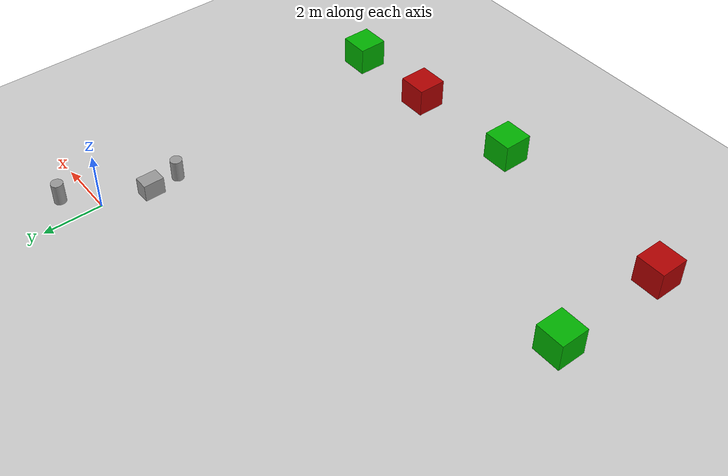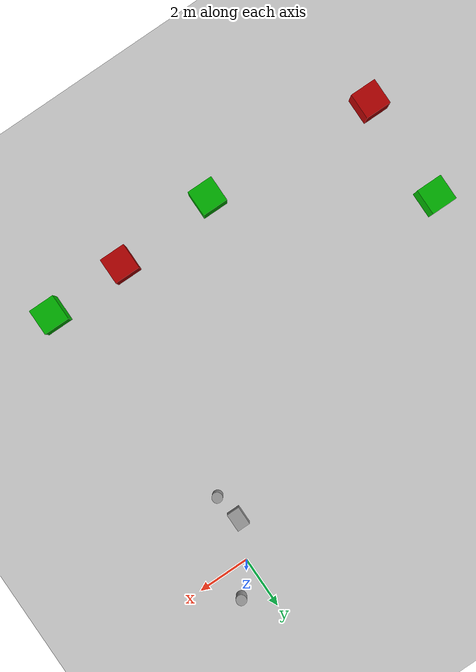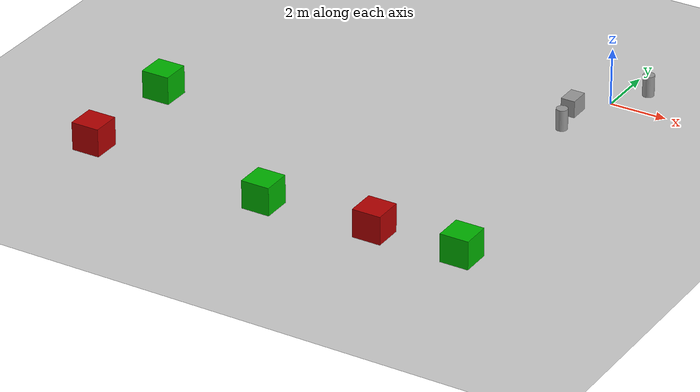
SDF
<sdf version="1.6">
 <world name="default">
  <model name="ground_plane">
   <static>1</static>
   <link name="link">
    <collision name="collision">
     <geometry><plane><normal>0 0 1</normal><size>100 100</size></plane></geometry>
     <surface>
      <contact><collide_bitmask>65535</collide_bitmask></contact>
      <friction><ode><mu>100</mu><mu2>50</mu2></ode></friction>
     </surface>
    </collision>
    <visual name="visual">
     <cast_shadows>0</cast_shadows>
     <geometry><plane><normal>0 0 1</normal><size>100 100</size></plane></geometry>
     <material>
      <script><uri>file://media/materials/scripts/gazebo.material</uri><name>Gazebo/Grey</name></script>
     </material>
    </visual>
   </link>
  </model>
  <light name="sun" type="directional">
   <pose>0 0 10 0 -0 0</pose>
   <diffuse>0.8 0.8 0.8 1</diffuse>
   <specular>0.2 0.2 0.2 1</specular>
   <attenuation>
    <range>1000</range>
    <constant>0.9</constant>
    <linear>0.01</linear>
    <quadratic>0.001</quadratic>
   </attenuation>
   <direction>-0.5 0.1 -0.9</direction>
  </light>
  <gravity>0 0 -9.8</gravity>
  <magnetic_field>6e-06 2.3e-05 -4.2e-05</magnetic_field>
  <atmosphere type="adiabatic"/>
  <physics name="default_physics" default="0" type="ode">
   <max_step_size>0.001</max_step_size>
   <real_time_factor>1</real_time_factor>
   <real_time_update_rate>1000</real_time_update_rate>
  </physics>
  <scene><ambient>0.4 0.4 0.4 1</ambient><background>0.7 0.7 0.7 1</background><shadows>1</shadows></scene>
  <audio><device>default</device></audio>
  <spherical_coordinates>
   <surface_model>EARTH_WGS84</surface_model>
   <latitude_deg>0</latitude_deg>
   <longitude_deg>0</longitude_deg>
   <elevation>0</elevation>
   <heading_deg>0</heading_deg>
  </spherical_coordinates>
  <model name="cylinder_mainroom">
   <link name="link">
    <inertial>
     <mass>1</mass>
     <inertia><ixx>0.145833</ixx><ixy>0</ixy><ixz>0</ixz><iyy>0.145833</iyy><iyz>0</iyz><izz>0.125</izz></inertia>
    </inertial>
    <visual name="visual">
     <geometry><cylinder><radius>0.2</radius><length>0.75</length></cylinder></geometry>
     <material>
      <script><name>Gazebo/Grey</name><uri>file://media/materials/scripts/gazebo.material</uri></script>
      <shader type="vertex"><normal_map>__default__</normal_map></shader>
      <ambient>0.3 0.3 0.3 1</ambient>
      <diffuse>0.7 0.7 0.7 1</diffuse>
      <specular>0.01 0.01 0.01 1</specular>
      <emissive>0 0 0 1</emissive>
     </material>
    </visual>
    <collision name="collision">
     <geometry><cylinder><radius>0.5</radius><length>1</length></cylinder></geometry>
     <surface>
      <friction>
       <ode><mu>1</mu><mu2>1</mu2><fdir1>0 0 0</fdir1><slip1>0</slip1><slip2>0</slip2></ode>
       <torsional>
        <coefficient>1</coefficient>
        <patch_radius>0</patch_radius>
        <surface_radius>0</surface_radius>
        <use_patch_radius>1</use_patch_radius>
        <ode><slip>0</slip></ode>
       </torsional>
      </friction>
      <bounce><restitution_coefficient>0</restitution_coefficient><threshold>1e+06</threshold></bounce>
      <contact>
       <collide_without_contact>0</collide_without_contact>
       <collide_without_contact_bitmask>1</collide_without_contact_bitmask>
       <collide_bitmask>1</collide_bitmask>
       <ode>
        <soft_cfm>0</soft_cfm>
        <soft_erp>0.2</soft_erp>
        <kp>1e+13</kp>
        <kd>1</kd>
        <max_vel>0.01</max_vel>
        <min_depth>0</min_depth>
       </ode>
       <bullet>
        <split_impulse>1</split_impulse>
        <split_impulse_penetration_threshold>-0.01</split_impulse_penetration_threshold>
        <soft_cfm>0</soft_cfm>
        <soft_erp>0.2</soft_erp>
        <kp>1e+13</kp>
        <kd>1</kd>
       </bullet>
      </contact>
     </surface>
    </collision>
   </link>
   <static>0</static>
   <pose>-0.46829 -2.53002 0.499996 -2e-06 -2e-06 0</pose>
  </model>
  <model name="cylinder_mainroom_clone">
   <link name="link">
    <inertial>
     <mass>1</mass>
     <inertia><ixx>0.145833</ixx><ixy>0</ixy><ixz>0</ixz><iyy>0.145833</iyy><iyz>0</iyz><izz>0.125</izz></inertia>
    </inertial>
    <visual name="visual">
     <geometry><cylinder><radius>0.2</radius><length>0.75</length></cylinder></geometry>
     <material>
      <script><name>Gazebo/Grey</name><uri>file://media/materials/scripts/gazebo.material</uri></script>
      <shader type="vertex"><normal_map>__default__</normal_map></shader>
      <ambient>0.3 0.3 0.3 1</ambient>
      <diffuse>0.7 0.7 0.7 1</diffuse>
      <specular>0.01 0.01 0.01 1</specular>
      <emissive>0 0 0 1</emissive>
     </material>
    </visual>
    <collision name="collision">
     <geometry><cylinder><radius>0.5</radius><length>1</length></cylinder></geometry>
     <surface>
      <friction>
       <ode><mu>1</mu><mu2>1</mu2><fdir1>0 0 0</fdir1><slip1>0</slip1><slip2>0</slip2></ode>
       <torsional>
        <coefficient>1</coefficient>
        <patch_radius>0</patch_radius>
        <surface_radius>0</surface_radius>
        <use_patch_radius>1</use_patch_radius>
        <ode><slip>0</slip></ode>
       </torsional>
      </friction>
      <bounce><restitution_coefficient>0</restitution_coefficient><threshold>1e+06</threshold></bounce>
      <contact>
       <collide_without_contact>0</collide_without_contact>
       <collide_without_contact_bitmask>1</collide_without_contact_bitmask>
       <collide_bitmask>1</collide_bitmask>
       <ode>
        <soft_cfm>0</soft_cfm>
        <soft_erp>0.2</soft_erp>
        <kp>1e+13</kp>
        <kd>1</kd>
        <max_vel>0.01</max_vel>
        <min_depth>0</min_depth>
       </ode>
       <bullet>
        <split_impulse>1</split_impulse>
        <split_impulse_penetration_threshold>-0.01</split_impulse_penetration_threshold>
        <soft_cfm>0</soft_cfm>
        <soft_erp>0.2</soft_erp>
        <kp>1e+13</kp>
        <kd>1</kd>
       </bullet>
      </contact>
     </surface>
    </collision>
   </link>
   <static>0</static>
   <pose>0.868753 0.954082 0.499996 -2e-06 -2e-06 0</pose>
  </model>
  <model name="box_mainroom">
   <link name="link">
    <inertial>
     <mass>1</mass>
     <inertia>
      <ixx>0.166667</ixx>
      <ixy>0</ixy>
      <ixz>0</ixz>
      <iyy>0.166667</iyy>
      <iyz>0</iyz>
      <izz>0.166667</izz>
     </inertia>
    </inertial>
    <visual name="visual">
     <geometry><box><size>0.5 0.7 0.6</size></box></geometry>
     <material>
      <script><name>Gazebo/Grey</name><uri>file://media/materials/scripts/gazebo.material</uri></script>
      <shader type="vertex"><normal_map>__default__</normal_map></shader>
      <ambient>0.3 0.3 0.3 1</ambient>
      <diffuse>0.7 0.7 0.7 1</diffuse>
      <specular>0.01 0.01 0.01 1</specular>
      <emissive>0 0 0 1</emissive>
     </material>
    </visual>
    <collision name="collision">
     <geometry><box><size>1 1 1</size></box></geometry>
     <surface>
      <friction>
       <ode><mu>1</mu><mu2>1</mu2><fdir1>0 0 0</fdir1><slip1>0</slip1><slip2>0</slip2></ode>
       <torsional>
        <coefficient>1</coefficient>
        <patch_radius>0</patch_radius>
        <surface_radius>0</surface_radius>
        <use_patch_radius>1</use_patch_radius>
        <ode><slip>0</slip></ode>
       </torsional>
      </friction>
      <bounce><restitution_coefficient>0</restitution_coefficient><threshold>1e+06</threshold></bounce>
      <contact>
       <collide_without_contact>0</collide_without_contact>
       <collide_without_contact_bitmask>1</collide_without_contact_bitmask>
       <collide_bitmask>1</collide_bitmask>
       <ode>
        <soft_cfm>0</soft_cfm>
        <soft_erp>0.2</soft_erp>
        <kp>1e+13</kp>
        <kd>1</kd>
        <max_vel>0.01</max_vel>
        <min_depth>0</min_depth>
       </ode>
       <bullet>
        <split_impulse>1</split_impulse>
        <split_impulse_penetration_threshold>-0.01</split_impulse_penetration_threshold>
        <soft_cfm>0</soft_cfm>
        <soft_erp>0.2</soft_erp>
        <kp>1e+13</kp>
        <kd>1</kd>
       </bullet>
      </contact>
     </surface>
    </collision>
   </link>
   <static>0</static>
   <pose>-0.647841 -1.46416 0.499995 -1e-05 -0 5e-06</pose>
  </model>
  <model name="unit_box_green">
   <link name="link">
    <inertial>
     <mass>1</mass>
     <inertia>
      <ixx>0.166667</ixx>
      <ixy>0</ixy>
      <ixz>0</ixz>
      <iyy>0.166667</iyy>
      <iyz>0</iyz>
      <izz>0.166667</izz>
     </inertia>
    </inertial>
    <visual name="visual">
     <geometry><box><size>1 1 1</size></box></geometry>
     <material>
      <script><name>Gazebo/Grey</name><uri>file://media/materials/scripts/gazebo.material</uri></script>
      <diffuse>0 0.7 0 0</diffuse>
      <shader type="vertex"><normal_map>__default__</normal_map></shader>
      <ambient>0 0.7 0 0</ambient>
      <specular>0.01 0.01 0.01 1</specular>
      <emissive>0 0 0 1</emissive>
     </material>
    </visual>
    <collision name="collision">
     <geometry><box><size>1 1 1</size></box></geometry>
     <surface>
      <friction>
       <ode><mu>1</mu><mu2>1</mu2><fdir1>0 0 0</fdir1><slip1>0</slip1><slip2>0</slip2></ode>
       <torsional>
        <coefficient>1</coefficient>
        <patch_radius>0</patch_radius>
        <surface_radius>0</surface_radius>
        <use_patch_radius>1</use_patch_radius>
        <ode><slip>0</slip></ode>
       </torsional>
      </friction>
      <bounce><restitution_coefficient>0</restitution_coefficient><threshold>1e+06</threshold></bounce>
      <contact>
       <collide_without_contact>0</collide_without_contact>
       <collide_without_contact_bitmask>1</collide_without_contact_bitmask>
       <collide_bitmask>1</collide_bitmask>
       <ode>
        <soft_cfm>0</soft_cfm>
        <soft_erp>0.2</soft_erp>
        <kp>1e+13</kp>
        <kd>1</kd>
        <max_vel>0.01</max_vel>
        <min_depth>0</min_depth>
       </ode>
       <bullet>
        <split_impulse>1</split_impulse>
        <split_impulse_penetration_threshold>-0.01</split_impulse_penetration_threshold>
        <soft_cfm>0</soft_cfm>
        <soft_erp>0.2</soft_erp>
        <kp>1e+13</kp>
        <kd>1</kd>
       </bullet>
      </contact>
     </surface>
    </collision>
   </link>
   <static>0</static>
   <pose>-6.19717 -11.5548 0.499995 0 1e-05 0</pose>
  </model>
  <model name="unit_box_red">
   <link name="link">
    <inertial>
     <mass>1</mass>
     <inertia>
      <ixx>0.166667</ixx>
      <ixy>0</ixy>
      <ixz>0</ixz>
      <iyy>0.166667</iyy>
      <iyz>0</iyz>
      <izz>0.166667</izz>
     </inertia>
    </inertial>
    <visual name="visual">
     <geometry><box><size>1 1 1</size></box></geometry>
     <material>
      <script><name>Gazebo/Grey</name><uri>file://media/materials/scripts/gazebo.material</uri></script>
      <ambient>0.7 0 0 0</ambient>
      <shader type="vertex"><normal_map>__default__</normal_map></shader>
      <diffuse>0.7 0 0 0</diffuse>
      <specular>0.01 0.01 0.01 1</specular>
      <emissive>0 0 0 1</emissive>
     </material>
    </visual>
    <collision name="collision">
     <geometry><box><size>1 1 1</size></box></geometry>
     <surface>
      <friction>
       <ode><mu>1</mu><mu2>1</mu2><fdir1>0 0 0</fdir1><slip1>0</slip1><slip2>0</slip2></ode>
       <torsional>
        <coefficient>1</coefficient>
        <patch_radius>0</patch_radius>
        <surface_radius>0</surface_radius>
        <use_patch_radius>1</use_patch_radius>
        <ode><slip>0</slip></ode>
       </torsional>
      </friction>
      <bounce><restitution_coefficient>0</restitution_coefficient><threshold>1e+06</threshold></bounce>
      <contact>
       <collide_without_contact>0</collide_without_contact>
       <collide_without_contact_bitmask>1</collide_without_contact_bitmask>
       <collide_bitmask>1</collide_bitmask>
       <ode>
        <soft_cfm>0</soft_cfm>
        <soft_erp>0.2</soft_erp>
        <kp>1e+13</kp>
        <kd>1</kd>
        <max_vel>0.01</max_vel>
        <min_depth>0</min_depth>
       </ode>
       <bullet>
        <split_impulse>1</split_impulse>
        <split_impulse_penetration_threshold>-0.01</split_impulse_penetration_threshold>
        <soft_cfm>0</soft_cfm>
        <soft_erp>0.2</soft_erp>
        <kp>1e+13</kp>
        <kd>1</kd>
       </bullet>
      </contact>
     </surface>
    </collision>
   </link>
   <static>0</static>
   <pose>-2.28375 -11.3196 0.499995 1e-05 -0 5e-06</pose>
  </model>
  <model name="unit_box_green_1">
   <link name="link">
    <inertial>
     <mass>1</mass>
     <inertia>
      <ixx>0.166667</ixx>
      <ixy>0</ixy>
      <ixz>0</ixz>
      <iyy>0.166667</iyy>
      <iyz>0</iyz>
      <izz>0.166667</izz>
     </inertia>
    </inertial>
    <visual name="visual">
     <geometry><box><size>1 1 1</size></box></geometry>
     <material>
      <script><name>Gazebo/Grey</name><uri>file://media/materials/scripts/gazebo.material</uri></script>
      <diffuse>0 0.7 0 0</diffuse>
      <shader type="vertex"><normal_map>__default__</normal_map></shader>
      <ambient>0 0.7 0 0</ambient>
      <specular>0.01 0.01 0.01 1</specular>
      <emissive>0 0 0 1</emissive>
     </material>
    </visual>
    <collision name="collision">
     <geometry><box><size>1 1 1</size></box></geometry>
     <surface>
      <friction>
       <ode><mu>1</mu><mu2>1</mu2><fdir1>0 0 0</fdir1><slip1>0</slip1><slip2>0</slip2></ode>
       <torsional>
        <coefficient>1</coefficient>
        <patch_radius>0</patch_radius>
        <surface_radius>0</surface_radius>
        <use_patch_radius>1</use_patch_radius>
        <ode><slip>0</slip></ode>
       </torsional>
      </friction>
      <bounce><restitution_coefficient>0</restitution_coefficient><threshold>1e+06</threshold></bounce>
      <contact>
       <collide_without_contact>0</collide_without_contact>
       <collide_without_contact_bitmask>1</collide_without_contact_bitmask>
       <collide_bitmask>1</collide_bitmask>
       <ode>
        <soft_cfm>0</soft_cfm>
        <soft_erp>0.2</soft_erp>
        <kp>1e+13</kp>
        <kd>1</kd>
        <max_vel>0.01</max_vel>
        <min_depth>0</min_depth>
       </ode>
       <bullet>
        <split_impulse>1</split_impulse>
        <split_impulse_penetration_threshold>-0.01</split_impulse_penetration_threshold>
        <soft_cfm>0</soft_cfm>
        <soft_erp>0.2</soft_erp>
        <kp>1e+13</kp>
        <kd>1</kd>
       </bullet>
      </contact>
     </surface>
    </collision>
   </link>
   <static>0</static>
   <pose>0.802235 -11.2352 0.499995 -1e-05 0 0</pose>
  </model>
  <model name="unit_box_green_2">
   <link name="link">
    <inertial>
     <mass>1</mass>
     <inertia>
      <ixx>0.166667</ixx>
      <ixy>0</ixy>
      <ixz>0</ixz>
      <iyy>0.166667</iyy>
      <iyz>0</iyz>
      <izz>0.166667</izz>
     </inertia>
    </inertial>
    <visual name="visual">
     <geometry><box><size>1 1 1</size></box></geometry>
     <material>
      <script><name>Gazebo/Grey</name><uri>file://media/materials/scripts/gazebo.material</uri></script>
      <diffuse>0 0.7 0 0</diffuse>
      <shader type="vertex"><normal_map>__default__</normal_map></shader>
      <ambient>0 0.7 0 0</ambient>
      <specular>0.01 0.01 0.01 1</specular>
      <emissive>0 0 0 1</emissive>
     </material>
    </visual>
    <collision name="collision">
     <geometry><box><size>1 1 1</size></box></geometry>
     <surface>
      <friction>
       <ode><mu>1</mu><mu2>1</mu2><fdir1>0 0 0</fdir1><slip1>0</slip1><slip2>0</slip2></ode>
       <torsional>
        <coefficient>1</coefficient>
        <patch_radius>0</patch_radius>
        <surface_radius>0</surface_radius>
        <use_patch_radius>1</use_patch_radius>
        <ode><slip>0</slip></ode>
       </torsional>
      </friction>
      <bounce><restitution_coefficient>0</restitution_coefficient><threshold>1e+06</threshold></bounce>
      <contact>
       <collide_without_contact>0</collide_without_contact>
       <collide_without_contact_bitmask>1</collide_without_contact_bitmask>
       <collide_bitmask>1</collide_bitmask>
       <ode>
        <soft_cfm>0</soft_cfm>
        <soft_erp>0.2</soft_erp>
        <kp>1e+13</kp>
        <kd>1</kd>
        <max_vel>0.01</max_vel>
        <min_depth>0</min_depth>
       </ode>
       <bullet>
        <split_impulse>1</split_impulse>
        <split_impulse_penetration_threshold>-0.01</split_impulse_penetration_threshold>
        <soft_cfm>0</soft_cfm>
        <soft_erp>0.2</soft_erp>
        <kp>1e+13</kp>
        <kd>1</kd>
       </bullet>
      </contact>
     </surface>
    </collision>
   </link>
   <static>0</static>
   <pose>-12.9325 -7.0301 0.499995 -1e-05 0 0</pose>
  </model>
  <model name="unit_box_red_1">
   <link name="link">
    <inertial>
     <mass>1</mass>
     <inertia>
      <ixx>0.166667</ixx>
      <ixy>0</ixy>
      <ixz>0</ixz>
      <iyy>0.166667</iyy>
      <iyz>0</iyz>
      <izz>0.166667</izz>
     </inertia>
    </inertial>
    <visual name="visual">
     <geometry><box><size>1 1 1</size></box></geometry>
     <material>
      <script><name>Gazebo/Grey</name><uri>file://media/materials/scripts/gazebo.material</uri></script>
      <ambient>0.7 0 0 0</ambient>
      <shader type="vertex"><normal_map>__default__</normal_map></shader>
      <diffuse>0.7 0 0 0</diffuse>
      <specular>0.01 0.01 0.01 1</specular>
      <emissive>0 0 0 1</emissive>
     </material>
    </visual>
    <collision name="collision">
     <geometry><box><size>1 1 1</size></box></geometry>
     <surface>
      <friction>
       <ode><mu>1</mu><mu2>1</mu2><fdir1>0 0 0</fdir1><slip1>0</slip1><slip2>0</slip2></ode>
       <torsional>
        <coefficient>1</coefficient>
        <patch_radius>0</patch_radius>
        <surface_radius>0</surface_radius>
        <use_patch_radius>1</use_patch_radius>
        <ode><slip>0</slip></ode>
       </torsional>
      </friction>
      <bounce><restitution_coefficient>0</restitution_coefficient><threshold>1e+06</threshold></bounce>
      <contact>
       <collide_without_contact>0</collide_without_contact>
       <collide_without_contact_bitmask>1</collide_without_contact_bitmask>
       <collide_bitmask>1</collide_bitmask>
       <ode>
        <soft_cfm>0</soft_cfm>
        <soft_erp>0.2</soft_erp>
        <kp>1e+13</kp>
        <kd>1</kd>
        <max_vel>0.01</max_vel>
        <min_depth>0</min_depth>
       </ode>
       <bullet>
        <split_impulse>1</split_impulse>
        <split_impulse_penetration_threshold>-0.01</split_impulse_penetration_threshold>
        <soft_cfm>0</soft_cfm>
        <soft_erp>0.2</soft_erp>
        <kp>1e+13</kp>
        <kd>1</kd>
       </bullet>
      </contact>
     </surface>
    </collision>
   </link>
   <static>0</static>
   <pose>-12.9078 -11.1393 0.499995 1e-05 -0 5e-06</pose>
  </model>
 </world>
</sdf>
